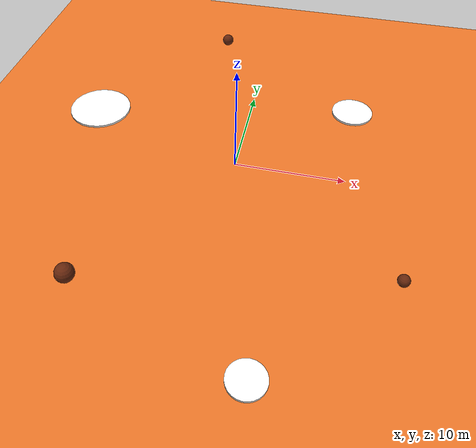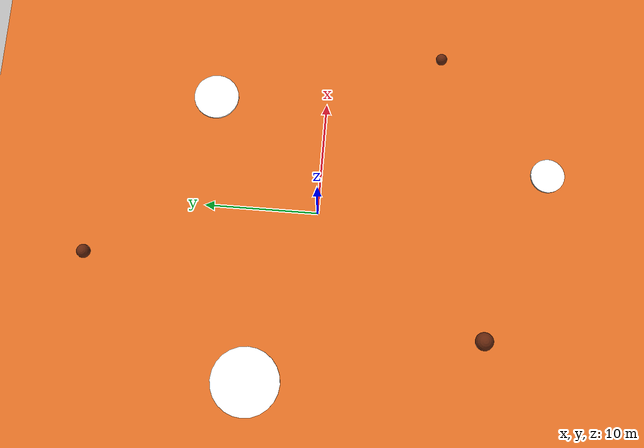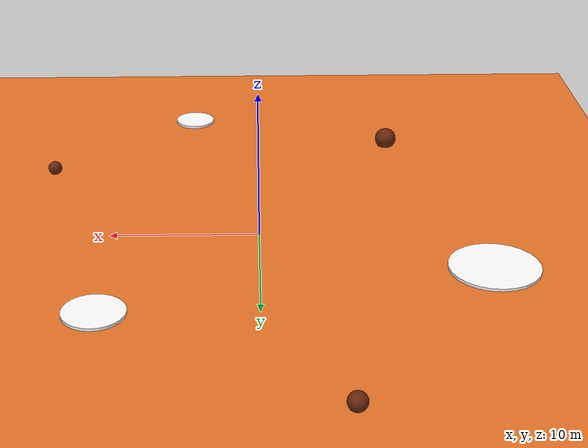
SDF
<?xml version="1.0" ?>
<sdf version="1.5">
  <world name="martian_simple_world">
    <!-- Basic Light -->
    <include>
      <uri>model://sun</uri>
    </include>

    <!-- Martian Gravity -->
    <gravity>0 0 -3.711</gravity>

    <!-- Simple Orange Ground Plane -->
    <model name="martian_ground">
      <static>true</static>
      <pose>0 0 0 0 0 0</pose>
      <link name="link">
        <collision name="collision">
          <geometry>
            <plane>
              <normal>0 0 1</normal>
              <size>200 200</size>
            </plane>
          </geometry>
        </collision>
        <visual name="visual">
          <geometry>
            <plane>
              <normal>0 0 1</normal>
              <size>200 200</size>
            </plane>
          </geometry>
          <material>
            <ambient>0.8 0.4 0.1 1.0</ambient>
            <diffuse>0.9 0.45 0.15 1.0</diffuse>
          </material>
        </visual>
      </link>
    </model>

    <!-- Dummy Data: 3 White Ice Regions (Cylinders) -->
    <model name="ice_1">
      <static>true</static>
      <pose>10 10 0.1 0 0 0</pose>
      <link name="link">
        <visual name="visual">
          <geometry><cylinder><radius>2</radius><length>0.2</length></cylinder></geometry>
          <material><ambient>1 1 1 1</ambient><diffuse>1 1 1 1</diffuse></material>
        </visual>
        <collision name="collision"><geometry><cylinder><radius>2</radius><length>0.2</length></cylinder></geometry></collision>
      </link>
    </model>

    <model name="ice_2">
      <static>true</static>
      <pose>-15 5 0.1 0 0 0</pose>
      <link name="link">
        <visual name="visual">
          <geometry><cylinder><radius>3</radius><length>0.2</length></cylinder></geometry>
          <material><ambient>1 1 1 1</ambient><diffuse>1 1 1 1</diffuse></material>
        </visual>
        <collision name="collision"><geometry><cylinder><radius>3</radius><length>0.2</length></cylinder></geometry></collision>
      </link>
    </model>

    <model name="ice_3">
      <static>true</static>
      <pose>5 -20 0.1 0 0 0</pose>
      <link name="link">
        <visual name="visual">
          <geometry><cylinder><radius>1.5</radius><length>0.2</length></cylinder></geometry>
          <material><ambient>1 1 1 1</ambient><diffuse>1 1 1 1</diffuse></material>
        </visual>
        <collision name="collision"><geometry><cylinder><radius>1.5</radius><length>0.2</length></cylinder></geometry></collision>
      </link>
    </model>

    <!-- Dummy Data: 3 Regolith Spots (Brown Spheres) -->
    <model name="regolith_1">
      <static>true</static>
      <pose>15 -10 0.5 0 0 0</pose>
      <link name="link">
        <visual name="visual">
          <geometry><sphere><radius>0.5</radius></sphere></geometry>
          <material><ambient>0.3 0.1 0.0 1</ambient><diffuse>0.4 0.15 0.05 1</diffuse></material>
        </visual>
        <collision name="collision"><geometry><sphere><radius>0.5</radius></sphere></geometry></collision>
      </link>
    </model>

    <model name="regolith_2">
      <static>true</static>
      <pose>-10 -15 0.5 0 0 0</pose>
      <link name="link">
        <visual name="visual">
          <geometry><sphere><radius>0.8</radius></sphere></geometry>
          <material><ambient>0.3 0.1 0.0 1</ambient><diffuse>0.4 0.15 0.05 1</diffuse></material>
        </visual>
        <collision name="collision"><geometry><sphere><radius>0.8</radius></sphere></geometry></collision>
      </link>
    </model>

    <model name="regolith_3">
      <static>true</static>
      <pose>-5 20 0.5 0 0 0</pose>
      <link name="link">
        <visual name="visual">
          <geometry><sphere><radius>0.6</radius></sphere></geometry>
          <material><ambient>0.3 0.1 0.0 1</ambient><diffuse>0.4 0.15 0.05 1</diffuse></material>
        </visual>
        <collision name="collision"><geometry><sphere><radius>0.6</radius></sphere></geometry></collision>
      </link>
    </model>

  </world>
</sdf>
